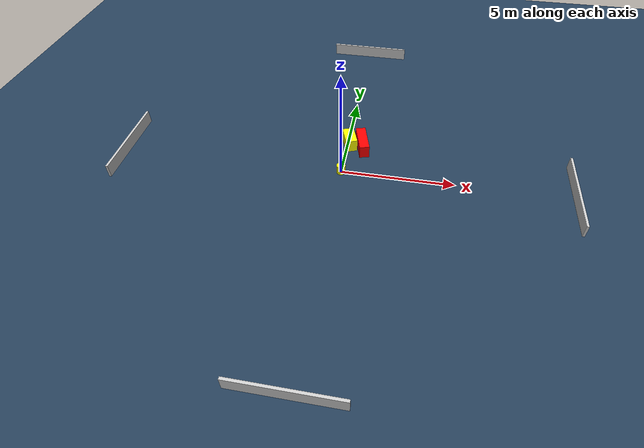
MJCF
<?xml version="1.0" ?>
<mujoco model="generated_environment">
  <option timestep="0.01" integrator="RK4" cone="elliptic"/>
  <default>
    <geom density="1"/>
  </default>
  <asset>
    <texture builtin="gradient" height="3072" name="skybox" rgb1="0.3 0.5 0.7" rgb2="0 0 0" type="skybox" width="512"/>
    <texture builtin="checker" height="300" name="groundplane" rgb1="0.2 0.3 0.4" rgb2="0.1 0.2 0.3" type="2d" width="300"/>
    <material name="groundplane" reflectance="0.2" texrepeat="5 5" texture="groundplane"/>
  </asset>
  <worldbody>
    <light dir="0 0 -1" directional="true" pos="0 0 1.5"/>
    <geom condim="3" friction="0.5 0.005 0.001" material="groundplane" name="floor" pos="0 0 0" size="0 0 0.05" type="plane"/>
    <body name="walls">
      <geom name="wall_1" condim="4" pos="-10.0 0.0 0.3" rgba="0.800000011920929 0.800000011920929 0.800000011920929 1.0" size="0.05 2.0 0.3" type="box"/>
      <geom name="wall_2" condim="4" pos="10.0 0.0 0.3" rgba="0.800000011920929 0.800000011920929 0.800000011920929 1.0" size="0.05 2.0 0.3" type="box"/>
      <geom name="wall_3" condim="4" pos="0.0 -10.0 0.3" rgba="0.800000011920929 0.800000011920929 0.800000011920929 1.0" size="2.0 0.05 0.3" type="box"/>
      <geom name="wall_4" condim="4" pos="0.0 10.0 0.3" rgba="0.800000011920929 0.800000011920929 0.800000011920929 1.0" size="2.0 0.05 0.3" type="box"/>
    </body>
    <body name="robot">
      <joint name="joint_x" type="slide" pos="0 0 0" axis="1 0 0"/>
      <joint name="joint_y" type="slide" pos="0 0 0" axis="0 1 0"/>
      <geom name="robot" type="cylinder" pos="0.0 0.0 0.2" size="0.2 0.2 0.0" mass="5.0" friction="1.0 0.005 0.0001" condim="4" rgba="1.0 1.0 0.0 1.0"/>
    </body>
    <body name="obstacle_1_movable">
      <geom name="obstacle_1_movable" condim="4" pos="0.08896133188302979 1.9037253500873155 0.3" euler="0 0 199.55121709975285" friction="0.0 0.005 0.001" rgba="1.0 1.0 0.0 1.0" size="0.2656057504038627 0.4767580559771954 0.3" type="box" mass="0.1"/>
      <joint type="free"/>
    </body>
    <body name="obstacle_2_static">
      <geom name="obstacle_2_static" condim="4" pos="0.6950099902304632 1.8157630134588025 0.3" euler="0 0 15.569195189330575" friction="0.0 0.005 0.001" rgba="1.0 0.0 0.0 1.0" size="0.22317816645004418 0.6984879683866445 0.3" type="box"/>
    </body>
  </worldbody>
  <actuator>
    <motor name="actuator_x" joint="joint_x" gear="1" ctrlrange="-1 1"/>
    <motor name="actuator_y" joint="joint_y" gear="1" ctrlrange="-1 1"/>
  </actuator>
</mujoco>
